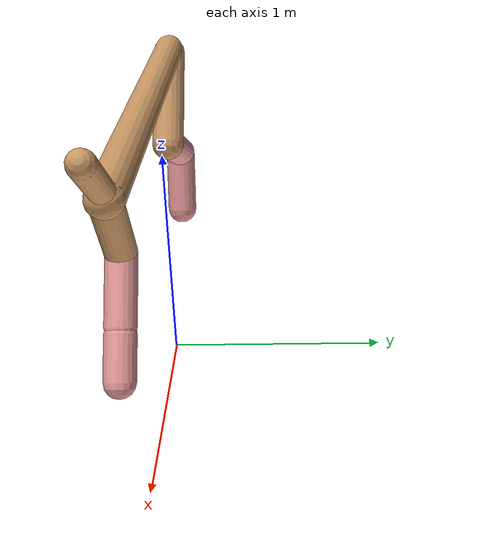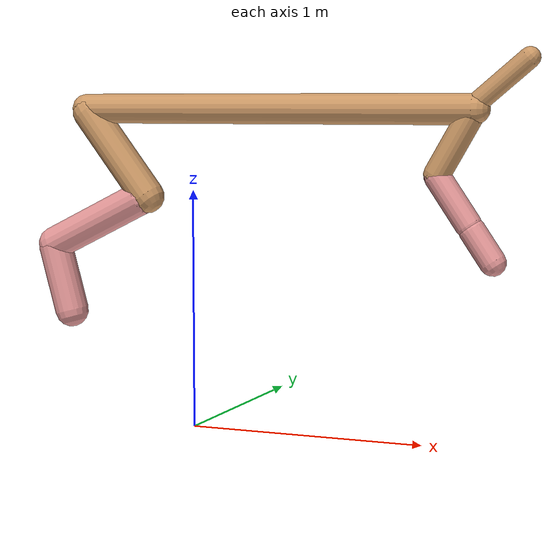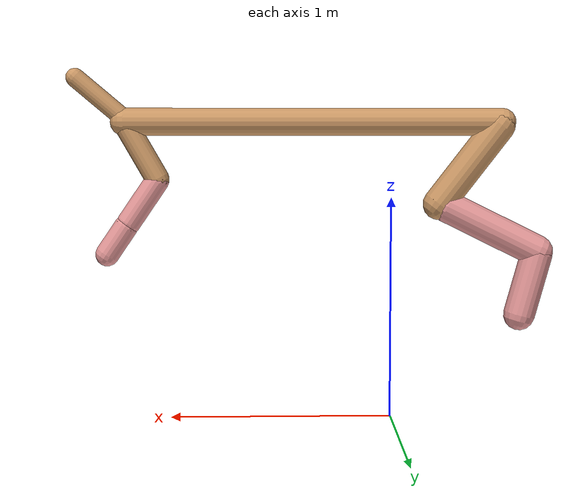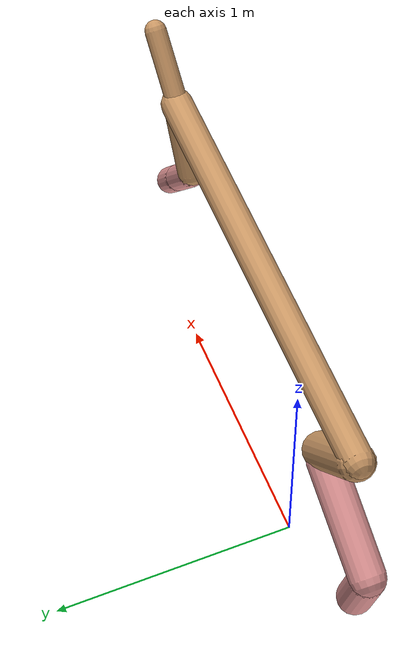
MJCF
<mujoco model="cheetah">
  <compiler angle="radian" coordinate="local" inertiafromgeom="true" settotalmass="14" />
  <default>
    <joint armature=".1" damping=".01" limited="true" solimplimit="0 .8 .03" solreflimit=".02 1" stiffness="8" />
    <geom conaffinity="0" condim="3" contype="1" friction="0.8 .1 .1" rgba="0.8 0.6 .4 1" solimp="0.0 0.8 0.01" solref="0.02 1" />
    <motor ctrllimited="true" ctrlrange="-1 1" />
  </default>
  <size nstack="300000" nuser_geom="1" />
  <option gravity="0 0 -9.81" timestep="0.01" />
  <worldbody>
    <body name="torso" pos="0.0 0.0 1.3410848746451989">
      <joint armature="0" axis="1 0 0" damping="0" limited="false" name="ignorex" pos="0 0 0" stiffness="0" type="slide" />
      <joint armature="0" axis="0 0 1" damping="0" limited="false" name="ignorez" pos="0 0 0" stiffness="0" type="slide" />
      <joint armature="0" axis="0 1 0" damping="0" limited="false" name="ignorey" pos="0 0 0" stiffness="0" type="hinge" />
      <geom fromto="-0.5 0.0 0.0 1.1999158109206225 0.0 0.0" name="torso" size="0.06215673897199532" type="capsule" />
      <geom axisangle="0 1 0 .87" name="head" pos="1.2999158109206226 0.0 0.1" size="0.04231841179192871 0.15" type="capsule" />

      <body name="bthigh" pos="-.5 0 0">
        <joint axis="0 1 0" damping="6" name="bthigh" pos="0 0 0" range="-.52 1.05" stiffness="240" type="hinge" />
        <geom axisangle="0 1 0 -3.8" name="bthigh" pos="0.14803141548298926 0.0 -0.19244084012788604" size="0.07186527685802932 0.22377737866402866" type="capsule" />
        <body name="bshin" pos="0.2560628309659785 0.0 -0.37488168025577207">
          <joint axis="0 1 0" damping="4.5" name="bshin" pos="0 0 0" range="-.785 .785" stiffness="180" type="hinge" />
          <geom axisangle="0 1 0 -2.03" name="bshin" pos="-0.21289030639255574 0.0 -0.10644515319627787" rgba="0.9 0.6 0.6 1" size="0.07186527685802932 0.23149383999727102" type="capsule" />
          <body name="bfoot" pos="-0.4257806127851115 0.0 -0.21289030639255574">
            <joint axis="0 1 0" damping="3" name="bfoot" pos="0 0 0" range="-.4 .785" stiffness="120" type="hinge" />
            <geom axisangle="0 1 0 -.27" name="bfoot" pos="0.0450894830562787 0.0 -0.14578932854863447" rgba="0.9 0.6 0.6 1" size="0.07186527685802932 0.14506947306495652" type="capsule" />
            <inertial mass="10" />
          </body>
        </body>
      </body>
      <body name="fthigh" pos="1.1999158109206225 0.0 0.0">
        <joint axis="0 1 0" damping="4.5" name="fthigh" pos="0 0 0" range="-1.5 0.8" stiffness="180" type="hinge" />
        <geom axisangle="0 1 0 .52" name="fthigh" pos="-0.07608249220474185 0.0 -0.13042712949384316" size="0.05361694415571288 0.145071526038663" type="capsule" />
        <body name="fshin" pos="-0.1521649844094837 0.0 -0.2608542589876863">
          <joint axis="0 1 0" damping="3" name="fshin" pos="0 0 0" range="-1.2 1.1" stiffness="120" type="hinge" />
          <geom axisangle="0 1 0 -.6" name="fshin" pos="0.07063295513841414 0.0 -0.0977994763454965" rgba="0.9 0.6 0.6 1" size="0.05361694415571288 0.11562091548946073" type="capsule" />
          <body name="ffoot" pos="0.14126591027682828 0.0 -0.195598952690993">
            <joint axis="0 1 0" damping="1.5" name="ffoot" pos="0 0 0" range="-3.1 -0.3" stiffness="60" type="hinge" />
            <geom axisangle="0 1 0 -.6" name="ffoot" pos="0.0484356680758661 0.0 -0.07534437256245839" rgba="0.9 0.6 0.6 1" size="0.05361694415571288 0.07635343475719106" type="capsule" />
            <inertial mass="10" />
          </body>
        </body>
      </body>
    </body>
  </worldbody>
  <actuator>
    <motor gear="120" joint="bthigh" name="bthigh" />
    <motor gear="90" joint="bshin" name="bshin" />
    <motor gear="60" joint="bfoot" name="bfoot" />
    <motor gear="120" joint="fthigh" name="fthigh" />
    <motor gear="60" joint="fshin" name="fshin" />
    <motor gear="30" joint="ffoot" name="ffoot" />
  </actuator>
</mujoco>
